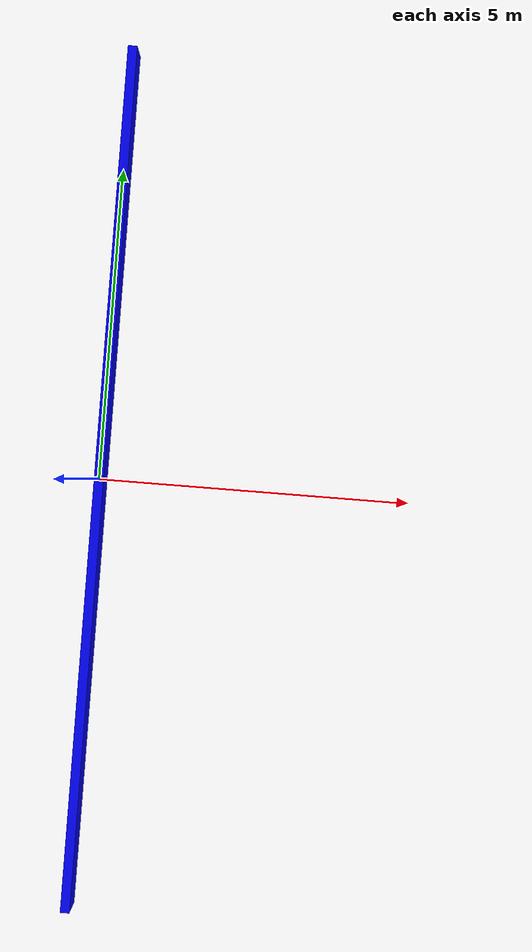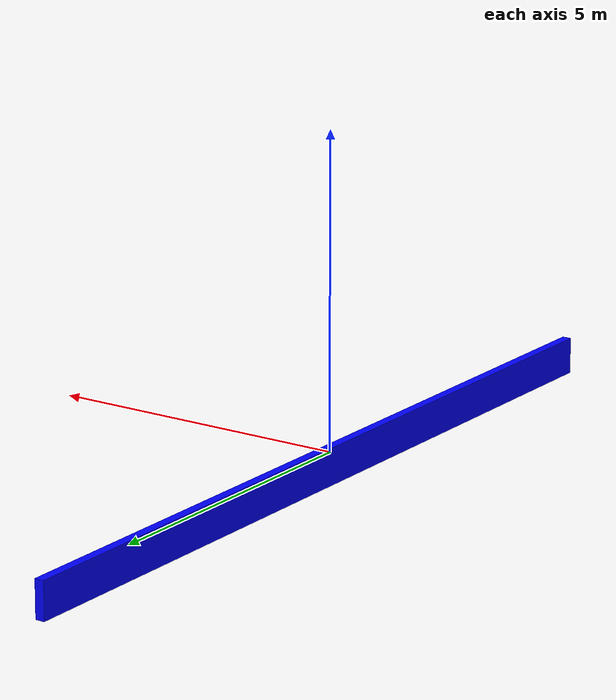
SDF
<?xml version="1.0" ?>
<sdf version="1.5">
  <model name="concrete_barrier_14m">
    <static>true</static>
    <link name="link">
      <collision name="concrete_barrier_14m_01">
        <pose>-0.0 0 0.3 0 0 0</pose>
        <geometry>
          <box>
            <size>14.0 0.15 0.6</size>
          </box>
        </geometry>
      </collision>
      <visual name="concrete_barrier_14m_visual">
        <geometry>
          <mesh>
            <uri>model://concrete_barrier_14m/meshes/concrete_barrier_14m_blue.dae</uri>
          </mesh>
        </geometry>
      </visual>
    </link>
  </model>
</sdf>
